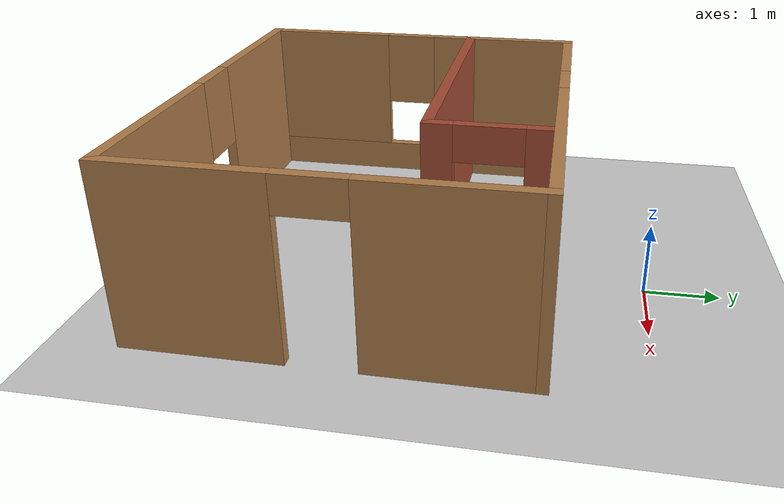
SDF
<sdf version="1.7">
 <world name="default">
  <light name="sun" type="directional">
   <pose>0 0 10 0 -0 0</pose>
   <diffuse>0.8 0.8 0.8 1</diffuse>
   <specular>0.2 0.2 0.2 1</specular>
   <attenuation>
    <range>1000</range>
    <constant>0.9</constant>
    <linear>0.01</linear>
    <quadratic>0.001</quadratic>
   </attenuation>
   <direction>-0.5 0.1 -0.9</direction>
   <spot><inner_angle>0</inner_angle><outer_angle>0</outer_angle><falloff>0</falloff></spot>
  </light>
  <model name="ground_plane">
   <static>1</static>
   <link name="link">
    <collision name="collision">
     <geometry><plane><normal>0 0 1</normal><size>100 100</size></plane></geometry>
     <surface><friction><ode><mu>100</mu><mu2>50</mu2></ode></friction></surface>
    </collision>
    <visual name="visual">
     <cast_shadows>0</cast_shadows>
     <geometry><plane><normal>0 0 1</normal><size>100 100</size></plane></geometry>
     <material>
      <script><uri>file://media/materials/scripts/gazebo.material</uri><name>Gazebo/Grey</name></script>
     </material>
    </visual>
   </link>
  </model>
  <gravity>0 0 -9.8</gravity>
  <magnetic_field>6e-06 2.3e-05 -4.2e-05</magnetic_field>
  <atmosphere type="adiabatic"/>
  <physics type="ode">
   <max_step_size>0.001</max_step_size>
   <real_time_factor>1</real_time_factor>
   <real_time_update_rate>1000</real_time_update_rate>
  </physics>
  <scene><ambient>0.4 0.4 0.4 1</ambient><background>0.7 0.7 0.7 1</background><shadows>1</shadows></scene>
  <audio><device>default</device></audio>
  <spherical_coordinates>
   <surface_model>EARTH_WGS84</surface_model>
   <latitude_deg>0</latitude_deg>
   <longitude_deg>0</longitude_deg>
   <elevation>0</elevation>
   <heading_deg>0</heading_deg>
  </spherical_coordinates>
  <model name="test3">
   <pose>-0.655 -3.2175 0 0 -0 0</pose>
   <link name="Wall_0">
    <pose>-2.925 -0.5925 0 0 -0 -1.5708</pose>
    <visual name="Wall_0_Visual_0">
     <pose>-1.4525 0 1.25 0 -0 0</pose>
     <geometry><box><size>2.345 0.15 2.5</size></box></geometry>
     <material>
      <script><uri>file://media/materials/scripts/gazebo.material</uri><name>Gazebo/Wood</name></script>
      <ambient>1 1 1 1</ambient>
     </material>
     <meta><layer>0</layer></meta>
    </visual>
    <collision name="Wall_0_Collision_0">
     <geometry><box><size>2.345 0.15 2.5</size></box></geometry>
     <pose>-1.4525 0 1.25 0 -0 0</pose>
    </collision>
    <visual name="Wall_0_Visual_1">
     <pose>1.1725 0 0.25 0 -0 0</pose>
     <geometry><box><size>2.905 0.15 0.5</size></box></geometry>
     <material>
      <script><uri>file://media/materials/scripts/gazebo.material</uri><name>Gazebo/Wood</name></script>
      <ambient>1 1 1 1</ambient>
     </material>
     <meta><layer>0</layer></meta>
    </visual>
    <collision name="Wall_0_Collision_1">
     <geometry><box><size>2.905 0.15 0.5</size></box></geometry>
     <pose>1.1725 0 0.25 0 -0 0</pose>
    </collision>
    <visual name="Wall_0_Visual_2">
     <pose>1.5725 0 1.5 0 -0 0</pose>
     <geometry><box><size>2.105 0.15 2</size></box></geometry>
     <material>
      <script><uri>file://media/materials/scripts/gazebo.material</uri><name>Gazebo/Wood</name></script>
      <ambient>1 1 1 1</ambient>
     </material>
     <meta><layer>0</layer></meta>
    </visual>
    <collision name="Wall_0_Collision_2">
     <geometry><box><size>2.105 0.15 2</size></box></geometry>
     <pose>1.5725 0 1.5 0 -0 0</pose>
    </collision>
    <visual name="Wall_0_Visual_3">
     <pose>0.12 0 1.9 0 -0 0</pose>
     <geometry><box><size>0.8 0.15 1.2</size></box></geometry>
     <material>
      <script><uri>file://media/materials/scripts/gazebo.material</uri><name>Gazebo/Wood</name></script>
      <ambient>1 1 1 1</ambient>
     </material>
     <meta><layer>0</layer></meta>
    </visual>
    <collision name="Wall_0_Collision_3">
     <geometry><box><size>0.8 0.15 1.2</size></box></geometry>
     <pose>0.12 0 1.9 0 -0 0</pose>
    </collision>
   </link>
   <link name="Wall_1">
    <pose>0 -3.1425 0 0 -0 0</pose>
    <visual name="Wall_1_Visual_0">
     <pose>-1.7925 0 1.25 0 -0 0</pose>
     <geometry><box><size>2.415 0.15 2.5</size></box></geometry>
     <material>
      <script><uri>file://media/materials/scripts/gazebo.material</uri><name>Gazebo/Wood</name></script>
      <ambient>1 1 1 1</ambient>
     </material>
     <meta><layer>0</layer></meta>
    </visual>
    <collision name="Wall_1_Collision_0">
     <geometry><box><size>2.415 0.15 2.5</size></box></geometry>
     <pose>-1.7925 0 1.25 0 -0 0</pose>
    </collision>
    <visual name="Wall_1_Visual_1">
     <pose>1.2075 0 0.25 0 -0 0</pose>
     <geometry><box><size>3.585 0.15 0.5</size></box></geometry>
     <material>
      <script><uri>file://media/materials/scripts/gazebo.material</uri><name>Gazebo/Wood</name></script>
      <ambient>1 1 1 1</ambient>
     </material>
     <meta><layer>0</layer></meta>
    </visual>
    <collision name="Wall_1_Collision_1">
     <geometry><box><size>3.585 0.15 0.5</size></box></geometry>
     <pose>1.2075 0 0.25 0 -0 0</pose>
    </collision>
    <visual name="Wall_1_Visual_2">
     <pose>1.6075 0 1.5 0 -0 0</pose>
     <geometry><box><size>2.785 0.15 2</size></box></geometry>
     <material>
      <script><uri>file://media/materials/scripts/gazebo.material</uri><name>Gazebo/Wood</name></script>
      <ambient>1 1 1 1</ambient>
     </material>
     <meta><layer>0</layer></meta>
    </visual>
    <collision name="Wall_1_Collision_2">
     <geometry><box><size>2.785 0.15 2</size></box></geometry>
     <pose>1.6075 0 1.5 0 -0 0</pose>
    </collision>
    <visual name="Wall_1_Visual_3">
     <pose>-0.185 0 1.9 0 -0 0</pose>
     <geometry><box><size>0.8 0.15 1.2</size></box></geometry>
     <material>
      <script><uri>file://media/materials/scripts/gazebo.material</uri><name>Gazebo/Wood</name></script>
      <ambient>1 1 1 1</ambient>
     </material>
     <meta><layer>0</layer></meta>
    </visual>
    <collision name="Wall_1_Collision_3">
     <geometry><box><size>0.8 0.15 1.2</size></box></geometry>
     <pose>-0.185 0 1.9 0 -0 0</pose>
    </collision>
   </link>
   <link name="Wall_2">
    <pose>2.925 -0.5925 0 0 -0 1.5708</pose>
    <visual name="Wall_2_Visual_0">
     <pose>-1.5525 0 1.25 0 -0 0</pose>
     <geometry><box><size>2.145 0.15 2.5</size></box></geometry>
     <material>
      <script><uri>file://media/materials/scripts/gazebo.material</uri><name>Gazebo/Wood</name></script>
      <ambient>1 1 1 1</ambient>
     </material>
     <meta><layer>0</layer></meta>
    </visual>
    <collision name="Wall_2_Collision_0">
     <geometry><box><size>2.145 0.15 2.5</size></box></geometry>
     <pose>-1.5525 0 1.25 0 -0 0</pose>
    </collision>
    <visual name="Wall_2_Visual_1">
     <pose>1.5225 0 1.25 0 -0 0</pose>
     <geometry><box><size>2.205 0.15 2.5</size></box></geometry>
     <material>
      <script><uri>file://media/materials/scripts/gazebo.material</uri><name>Gazebo/Wood</name></script>
      <ambient>1 1 1 1</ambient>
     </material>
     <meta><layer>0</layer></meta>
    </visual>
    <collision name="Wall_2_Collision_1">
     <geometry><box><size>2.205 0.15 2.5</size></box></geometry>
     <pose>1.5225 0 1.25 0 -0 0</pose>
    </collision>
    <visual name="Wall_2_Visual_2">
     <pose>-0.03 0 2.25 0 -0 0</pose>
     <geometry><box><size>0.9 0.15 0.5</size></box></geometry>
     <material>
      <script><uri>file://media/materials/scripts/gazebo.material</uri><name>Gazebo/Wood</name></script>
      <ambient>1 1 1 1</ambient>
     </material>
     <meta><layer>0</layer></meta>
    </visual>
    <collision name="Wall_2_Collision_2">
     <geometry><box><size>0.9 0.15 0.5</size></box></geometry>
     <pose>-0.03 0 2.25 0 -0 0</pose>
    </collision>
   </link>
   <link name="Wall_3">
    <pose>0 1.9575 0 0 -0 3.14159</pose>
    <visual name="Wall_3_Visual_0">
     <pose>-1.2775 0 1.25 0 -0 0</pose>
     <geometry><box><size>3.445 0.15 2.5</size></box></geometry>
     <material>
      <script><uri>file://media/materials/scripts/gazebo.material</uri><name>Gazebo/Wood</name></script>
      <ambient>1 1 1 1</ambient>
     </material>
     <meta><layer>0</layer></meta>
    </visual>
    <collision name="Wall_3_Collision_0">
     <geometry><box><size>3.445 0.15 2.5</size></box></geometry>
     <pose>-1.2775 0 1.25 0 -0 0</pose>
    </collision>
    <visual name="Wall_3_Visual_1">
     <pose>1.7225 0 0.25 0 -0 0</pose>
     <geometry><box><size>2.555 0.15 0.5</size></box></geometry>
     <material>
      <script><uri>file://media/materials/scripts/gazebo.material</uri><name>Gazebo/Wood</name></script>
      <ambient>1 1 1 1</ambient>
     </material>
     <meta><layer>0</layer></meta>
    </visual>
    <collision name="Wall_3_Collision_1">
     <geometry><box><size>2.555 0.15 0.5</size></box></geometry>
     <pose>1.7225 0 0.25 0 -0 0</pose>
    </collision>
    <visual name="Wall_3_Visual_2">
     <pose>2.1225 0 1.5 0 -0 0</pose>
     <geometry><box><size>1.755 0.15 2</size></box></geometry>
     <material>
      <script><uri>file://media/materials/scripts/gazebo.material</uri><name>Gazebo/Wood</name></script>
      <ambient>1 1 1 1</ambient>
     </material>
     <meta><layer>0</layer></meta>
    </visual>
    <collision name="Wall_3_Collision_2">
     <geometry><box><size>1.755 0.15 2</size></box></geometry>
     <pose>2.1225 0 1.5 0 -0 0</pose>
    </collision>
    <visual name="Wall_3_Visual_3">
     <pose>0.845 0 1.9 0 -0 0</pose>
     <geometry><box><size>0.8 0.15 1.2</size></box></geometry>
     <material>
      <script><uri>file://media/materials/scripts/gazebo.material</uri><name>Gazebo/Wood</name></script>
      <ambient>1 1 1 1</ambient>
     </material>
     <meta><layer>0</layer></meta>
    </visual>
    <collision name="Wall_3_Collision_3">
     <geometry><box><size>0.8 0.15 1.2</size></box></geometry>
     <pose>0.845 0 1.9 0 -0 0</pose>
    </collision>
   </link>
   <link name="Wall_5">
    <collision name="Wall_5_Collision">
     <geometry><box><size>4.25 0.15 2.5</size></box></geometry>
     <pose>0 0 1.25 0 -0 0</pose>
    </collision>
    <visual name="Wall_5_Visual">
     <pose>0 0 1.25 0 -0 0</pose>
     <geometry><box><size>4.25 0.15 2.5</size></box></geometry>
     <material>
      <script><uri>file://media/materials/scripts/gazebo.material</uri><name>Gazebo/Bricks</name></script>
      <ambient>1 1 1 1</ambient>
     </material>
     <meta><layer>0</layer></meta>
    </visual>
    <pose>-0.875 0.3175 0 0 -0 0</pose>
   </link>
   <link name="Wall_6">
    <pose>1.175 1.1175 0 0 -0 1.5708</pose>
    <visual name="Wall_6_Visual_0">
     <pose>-0.6725 0 1.25 0 -0 0</pose>
     <geometry><box><size>0.405 0.15 2.5</size></box></geometry>
     <material>
      <script><uri>file://media/materials/scripts/gazebo.material</uri><name>Gazebo/Bricks</name></script>
      <ambient>1 1 1 1</ambient>
     </material>
     <meta><layer>0</layer></meta>
    </visual>
    <collision name="Wall_6_Collision_0">
     <geometry><box><size>0.405 0.15 2.5</size></box></geometry>
     <pose>-0.6725 0 1.25 0 -0 0</pose>
    </collision>
    <visual name="Wall_6_Visual_1">
     <pose>0.6525 0 1.25 0 -0 0</pose>
     <geometry><box><size>0.445 0.15 2.5</size></box></geometry>
     <material>
      <script><uri>file://media/materials/scripts/gazebo.material</uri><name>Gazebo/Bricks</name></script>
      <ambient>1 1 1 1</ambient>
     </material>
     <meta><layer>0</layer></meta>
    </visual>
    <collision name="Wall_6_Collision_1">
     <geometry><box><size>0.445 0.15 2.5</size></box></geometry>
     <pose>0.6525 0 1.25 0 -0 0</pose>
    </collision>
    <visual name="Wall_6_Visual_2">
     <pose>-0.02 0 2.25 0 -0 0</pose>
     <geometry><box><size>0.9 0.15 0.5</size></box></geometry>
     <material>
      <script><uri>file://media/materials/scripts/gazebo.material</uri><name>Gazebo/Bricks</name></script>
      <ambient>1 1 1 1</ambient>
     </material>
     <meta><layer>0</layer></meta>
    </visual>
    <collision name="Wall_6_Collision_2">
     <geometry><box><size>0.9 0.15 0.5</size></box></geometry>
     <pose>-0.02 0 2.25 0 -0 0</pose>
    </collision>
   </link>
   <static>1</static>
  </model>
 </world>
</sdf>
